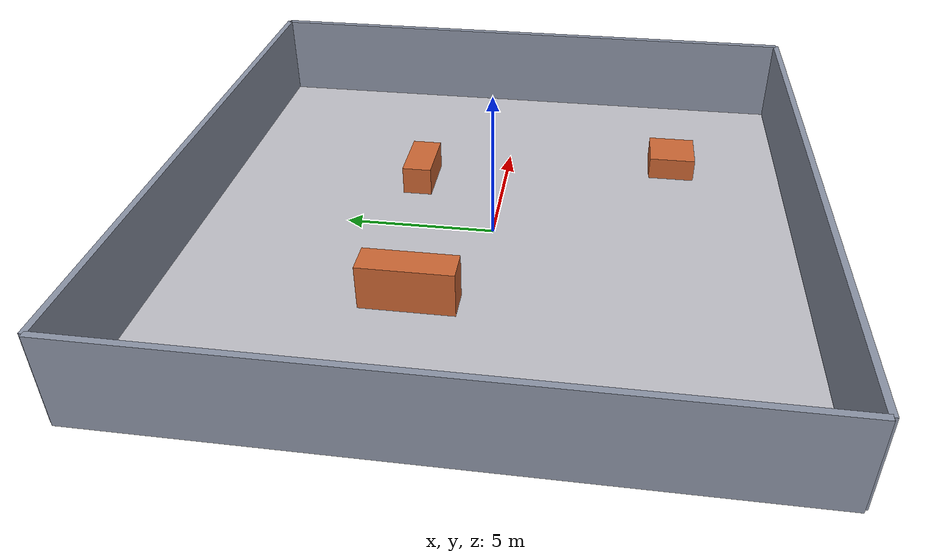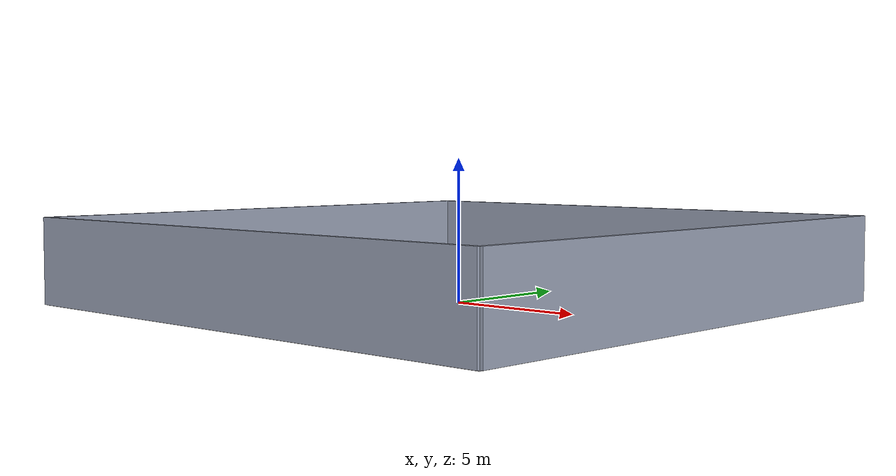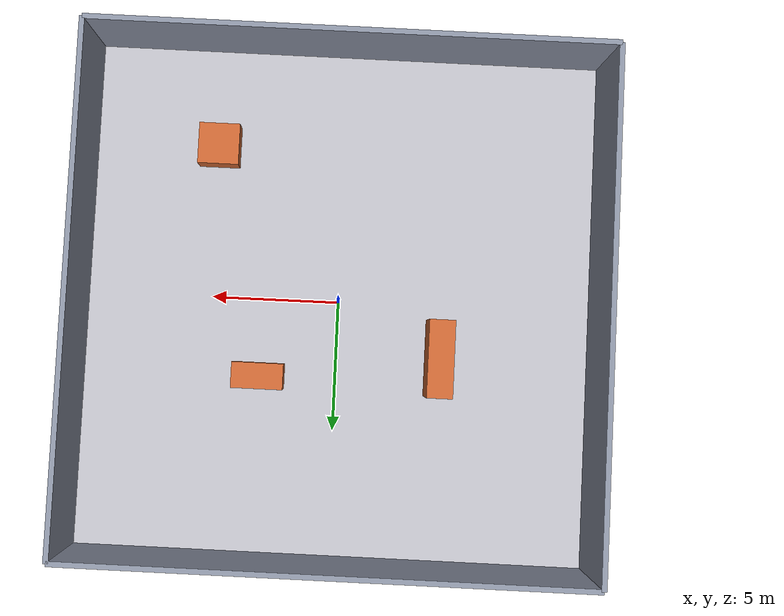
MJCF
<mujoco model="small_indoor">
  <option timestep="0.01" gravity="0 0 -9.81"/>

  <statistic center="0 0 1" extent="18"/>
  <visual>
    <headlight ambient="0.5 0.5 0.5" diffuse="0.45 0.45 0.45" specular="0 0 0"/>
    <global azimuth="130" elevation="-40"/>
  </visual>

  <worldbody>
    <!-- Two directional lights for even illumination (no positional falloff,
         so the floor has no hotspot). Lights never collide — no effect on
         ray-casts or the produced map. -->
    <light name="key" directional="true" pos="0 0 8" dir="0.2 0.3 -1"
           diffuse="0.55 0.55 0.55" specular="0 0 0"/>
    <light name="fill" directional="true" pos="6 6 8" dir="-0.5 -0.5 -1"
           diffuse="0.35 0.35 0.35" specular="0 0 0"/>

    <!-- Floor -->
    <geom name="floor" type="plane" size="10 10 0.05"
          rgba="0.75 0.75 0.78 1.0"/>

    <!-- Walls (opaque; open top so the viewer sees inside from above) -->
    <geom name="wall_east" type="box" pos="10 0 1.5" size="0.1 10 1.5"
          rgba="0.55 0.58 0.65 1.0"/>
    <geom name="wall_west" type="box" pos="-10 0 1.5" size="0.1 10 1.5"
          rgba="0.55 0.58 0.65 1.0"/>
    <geom name="wall_north" type="box" pos="0 10 1.5" size="10 0.1 1.5"
          rgba="0.55 0.58 0.65 1.0"/>
    <geom name="wall_south" type="box" pos="0 -10 1.5" size="10 0.1 1.5"
          rgba="0.55 0.58 0.65 1.0"/>

    <!-- Obstacles (opaque, for clear visual contrast) -->
    <geom name="obstacle_1" type="box" pos="3 3 0.5" size="1.0 0.5 0.5"
          rgba="0.8 0.4 0.2 1.0"/>
    <geom name="obstacle_2" type="box" pos="-4 2 0.75" size="0.5 1.5 0.75"
          rgba="0.8 0.4 0.2 1.0"/>
    <geom name="obstacle_3" type="box" pos="5 -6 0.4" size="0.8 0.8 0.4"
          rgba="0.8 0.4 0.2 1.0"/>
  </worldbody>
</mujoco>
